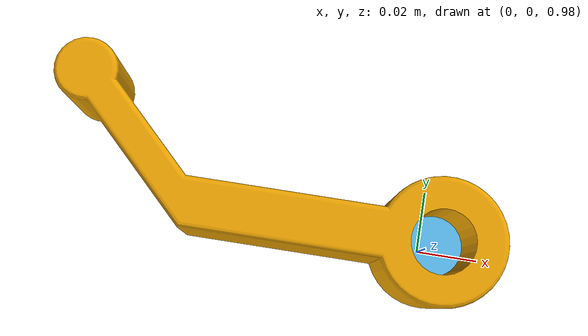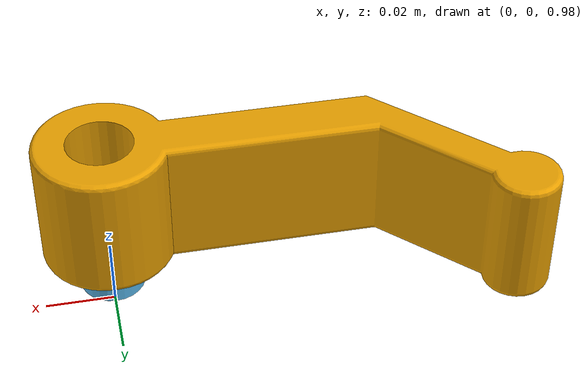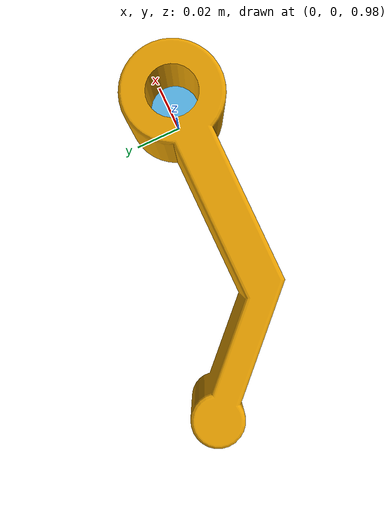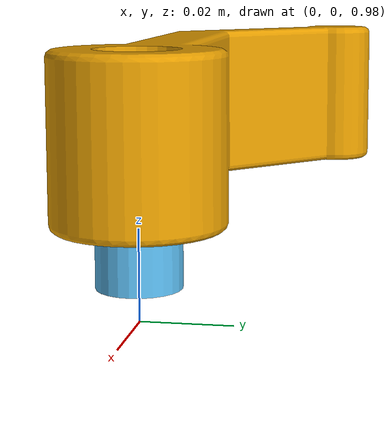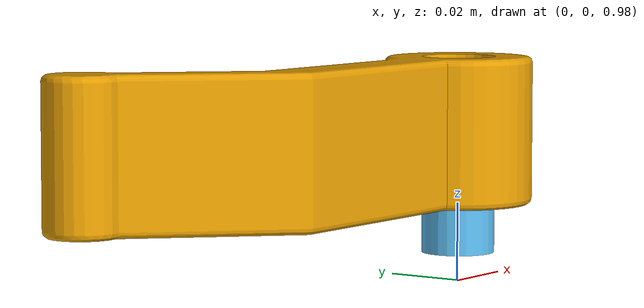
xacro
<?xml version="1.0"?>
<robot xmlns:xacro="http://www.ros.org/wiki/xacro" name="Clawbot">
  <link name="claw">
    <visual>
      <geometry>
        <mesh filename="package://learning_robot_control/meshes/gripperV2.dae" scale="0.0075 0.0075 0.0075"/>
      </geometry>
      <origin rpy="1.5707 0 0" xyz="0 0 0"/>
    </visual>

    <collision>
      <geometry>
        <mesh filename="package://learning_robot_control/meshes/gripperV2.dae" scale="0.0075 0.0075 0.0075"/>
      </geometry>
      <origin rpy="1.5707 0 0" xyz="0 0 0"/>
    </collision>

    <inertial>
      <mass value="10"/>
      <inertia
        ixx=".1"
        ixy="0"
        ixz="0"
        iyy=".1"
        iyz="0"
        izz=".1"/>
    </inertial>
  </link>
  <xacro:macro name="cylinder" params="name orientation radius depth density">
    <link name="${name}">
      <visual>
        <geometry>
          <cylinder length="${depth}" radius="${radius}"/>
        </geometry>
        <origin rpy="${orientation} 0 0" xyz="0 0 0"/>
      </visual>

      <collision>
        <geometry>
          <cylinder length="${depth}" radius="${radius}"/>
        </geometry>
        <origin rpy="${orientation} 0 0" xyz="0 0 0"/>
      </collision>

      <inertial>
        <mass value="${(radius*radius*density)*3.1415}"/>
        <inertia
          ixx="${(((radius*radius*density)*3.1415)/12)*(3*(radius*radius)+(depth*depth))}"
          ixy="0"
          ixz="0"
          iyy="${(((radius*radius*density)*3.1415)/12)*(3*(radius*radius)+(depth*depth))}"
          iyz="0"
          izz="${(((radius*radius*density)*3.1415)/2)*(radius*radius)}"/>
      </inertial>
    </link>
  </xacro:macro>

  <xacro:property name="c12Radius" value=".00925" />
  <xacro:property name="c12Depth" value=".025" />
  <xacro:cylinder name="c12" orientation="0" radius="${c12Radius}" depth="${c12Depth}" density="10"/>
    <link name="world"/>

    <joint name="clawToWorld" type="fixed">
      <parent link="world"/>
      <child link="claw"/>
      <origin xyz="0 0 1"/>
    </joint>
    <joint name="c12ToWorld" type="fixed">
      <parent link="world"/>
      <child link="c12"/>
      <origin xyz="0 0 1"/>
    </joint>
</robot>
